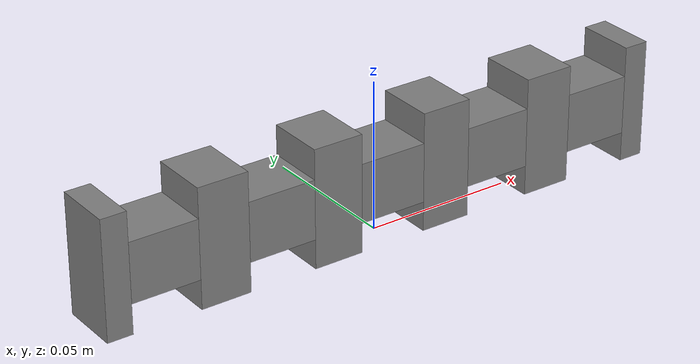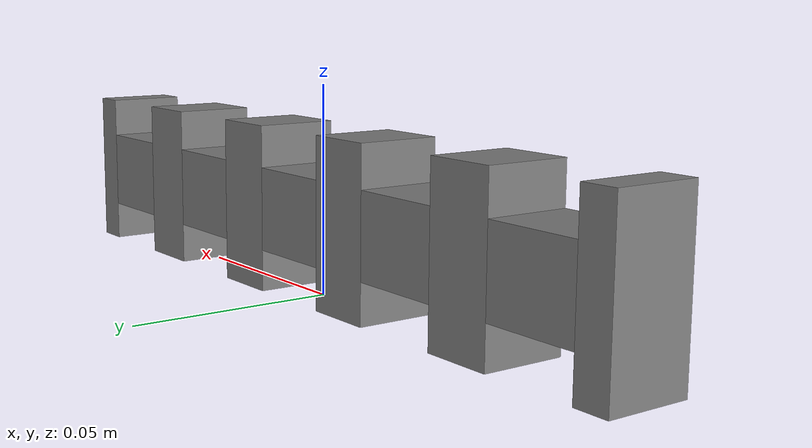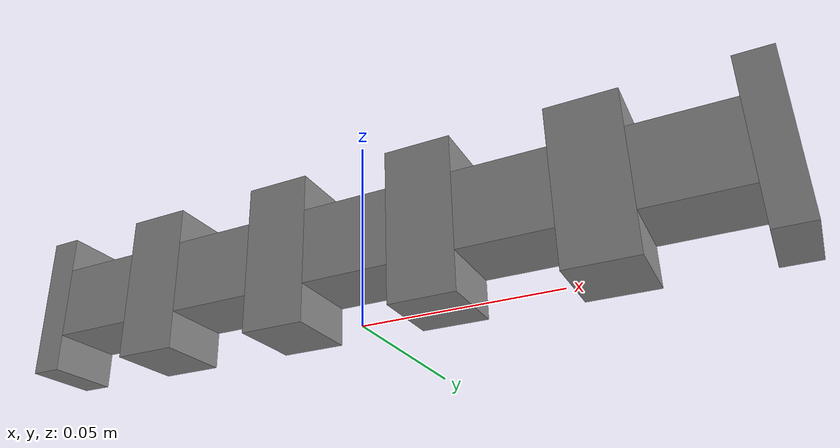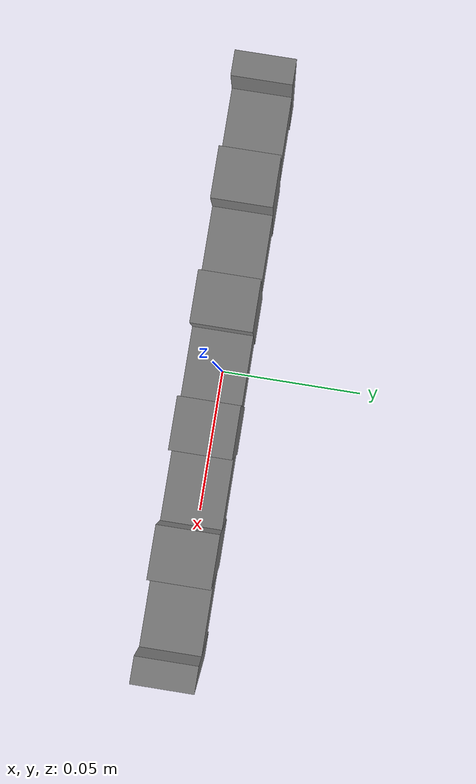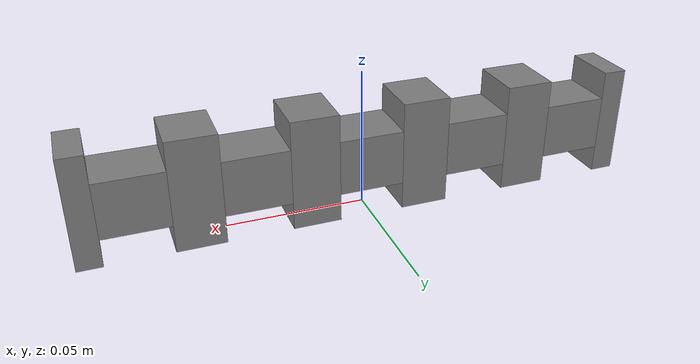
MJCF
<?xml version="1.0" ?>
<mujoco model="5_slot_block">
    <asset/>
    <worldbody>
        <body>
            <body name="object">

                <geom pos="0.0 0.0 0.02" size="0.0115 0.01 0.01" type="box" group="0" solimp="0.998 0.998 0.001" solref="0.02 1" friction="0.95 0.3 0.1" condim="4" density="100"/>
                <geom pos="-0.02 0.0 0.02" size="0.0085 0.01 0.02" type="box" group="0" solimp="0.998 0.998 0.001" solref="0.02 1" friction="0.95 0.3 0.1" condim="4" density="100"/>
                <geom pos="0.02 0.0 0.02" size="0.0085 0.01 0.02" type="box" group="0" solimp="0.998 0.998 0.001" solref="0.02 1" friction="0.95 0.3 0.1" condim="4" density="100"/>
                <geom pos="-0.04 0.0 0.02" size="0.0115 0.01 0.01" type="box" group="0" solimp="0.998 0.998 0.001" solref="0.02 1" friction="0.95 0.3 0.1" condim="4" density="100"/>
                <geom pos="0.04 0.0 0.02" size="0.0115 0.01 0.01" type="box" group="0" solimp="0.998 0.998 0.001" solref="0.02 1" friction="0.95 0.3 0.1" condim="4" density="100"/>
                <geom pos="-0.06 0.0 0.02" size="0.0085 0.01 0.02" type="box" group="0" solimp="0.998 0.998 0.001" solref="0.02 1" friction="0.95 0.3 0.1" condim="4" density="100"/>
                <geom pos="0.06 0.0 0.02" size="0.0085 0.01 0.02" type="box" group="0" solimp="0.998 0.998 0.001" solref="0.02 1" friction="0.95 0.3 0.1" condim="4" density="100"/>
                <geom pos="-0.08 0.0 0.02" size="0.0115 0.01 0.01" type="box" group="0" solimp="0.998 0.998 0.001" solref="0.02 1" friction="0.95 0.3 0.1" condim="4" density="100"/>
                <geom pos="0.08 0.0 0.02" size="0.0115 0.01 0.01" type="box" group="0" solimp="0.998 0.998 0.001" solref="0.02 1" friction="0.95 0.3 0.1" condim="4" density="100"/>
                <geom pos="-0.09575 0.0 0.02" size="0.00425 0.01 0.02" type="box" group="0" solimp="0.998 0.998 0.001" solref="0.02 1" friction="0.95 0.3 0.1" condim="4" density="100"/>
                <geom pos="0.09575 0.0 0.02" size="0.00425 0.01 0.02" type="box" group="0" solimp="0.998 0.998 0.001" solref="0.02 1" friction="0.95 0.3 0.1" condim="4" density="100"/>
            </body>
            <site rgba="0 0 0 0" size="0" pos="0 0 0" name="bottom_site"/>
            <site rgba="0 0 0 0" size="0" pos="0 0 0" name="top_site"/>
            <site rgba="0 0 0 0" size="0" pos="0 0 0" name="horizontal_radius_site"/>
        </body>
    </worldbody>
</mujoco>
